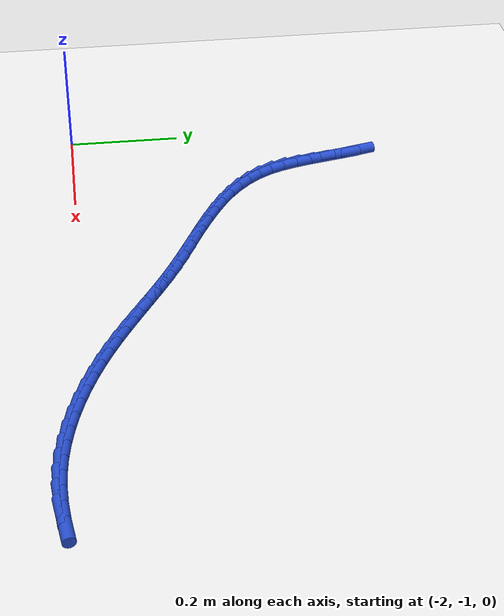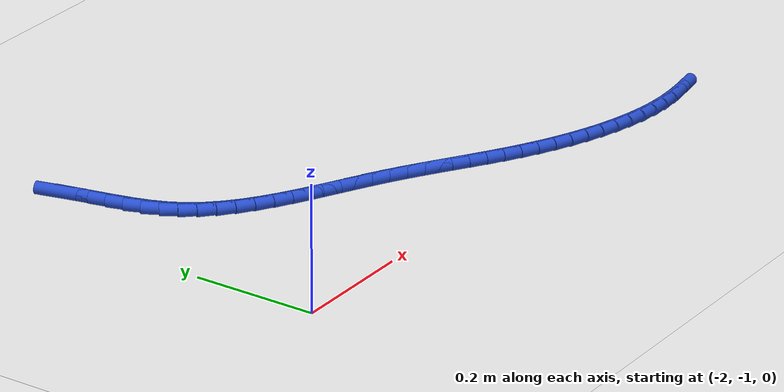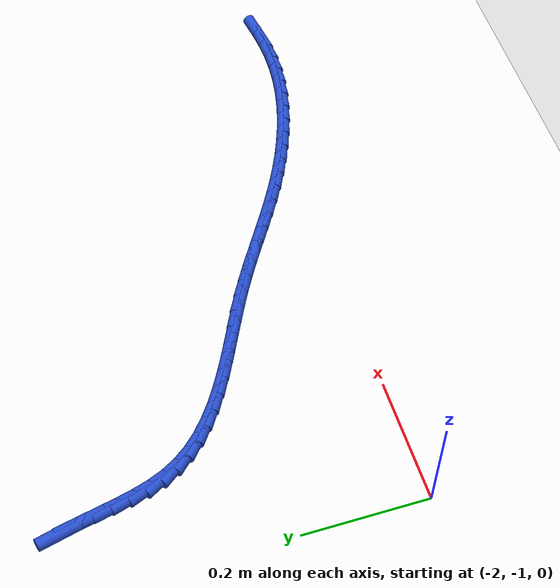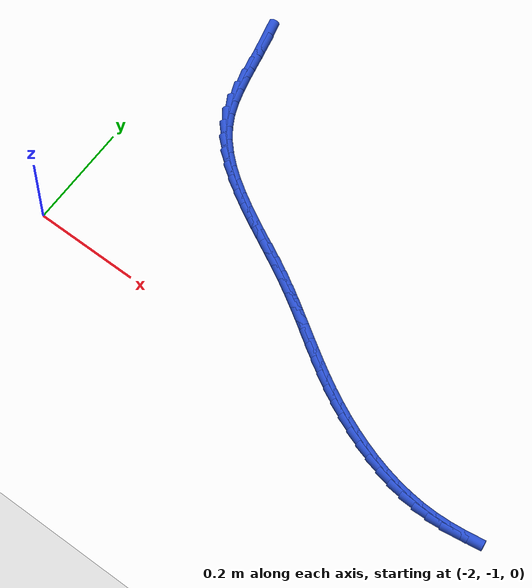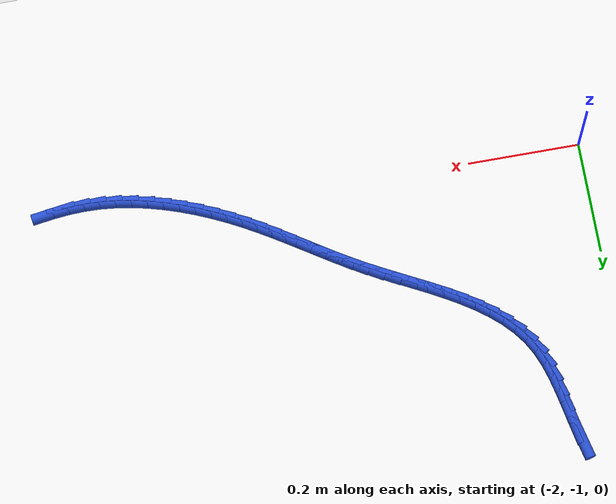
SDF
<sdf version="1.6">
 <world name="default">
  <model name="ground_plane">
   <static>1</static>
   <link name="link">
    <collision name="collision">
     <geometry><plane><normal>0 0 1</normal><size>100 100</size></plane></geometry>
     <surface><friction><ode><mu>100</mu><mu2>50</mu2></ode></friction></surface>
    </collision>
    <visual name="visual">
     <cast_shadows>0</cast_shadows>
     <geometry><plane><normal>0 0 1</normal><size>100 100</size></plane></geometry>
     <material>
      <script><uri>file://media/materials/scripts/gazebo.material</uri><name>Gazebo/WhiteGlow</name></script>
     </material>
    </visual>
   </link>
  </model>
  <model name="line">
   <link name="link_135">
    <pose>-1.8991626105600103 -0.4749659148873171 0.01 0 1.57 -1.340423242050216</pose>
    <collision name="collision">
     <geometry><cylinder><radius>0.01</radius><length>0.08</length></cylinder></geometry>
    </collision>
    <visual name="visual">
     <material>
      <script><name>Gazebo/Blue</name><uri>file://media/materials/scripts/gazebo.material</uri></script>
     </material>
     <geometry><cylinder><radius>0.01</radius><length>0.08</length></cylinder></geometry>
    </visual>
   </link>
   <link name="link_136">
    <pose>-1.8924834912622064 -0.5034438145118381 0.01 0 1.57 -1.3678612541677018</pose>
    <collision name="collision">
     <geometry><cylinder><radius>0.01</radius><length>0.08</length></cylinder></geometry>
    </collision>
    <visual name="visual">
     <material>
      <script><name>Gazebo/Blue</name><uri>file://media/materials/scripts/gazebo.material</uri></script>
     </material>
     <geometry><cylinder><radius>0.01</radius><length>0.08</length></cylinder></geometry>
    </visual>
   </link>
   <link name="link_137">
    <pose>-1.8865748603837853 -0.5321588918095376 0.01 0 1.57 -1.3676990048068947</pose>
    <collision name="collision">
     <geometry><cylinder><radius>0.01</radius><length>0.08</length></cylinder></geometry>
    </collision>
    <visual name="visual">
     <material>
      <script><name>Gazebo/Blue</name><uri>file://media/materials/scripts/gazebo.material</uri></script>
     </material>
     <geometry><cylinder><radius>0.01</radius><length>0.08</length></cylinder></geometry>
    </visual>
   </link>
   <link name="link_138">
    <pose>-1.8807017356431261 -0.5606779740618212 0.01 0 1.57 -1.3393568377235328</pose>
    <collision name="collision">
     <geometry><cylinder><radius>0.01</radius><length>0.08</length></cylinder></geometry>
    </collision>
    <visual name="visual">
     <material>
      <script><name>Gazebo/Blue</name><uri>file://media/materials/scripts/gazebo.material</uri></script>
     </material>
     <geometry><cylinder><radius>0.01</radius><length>0.08</length></cylinder></geometry>
    </visual>
   </link>
   <link name="link_139">
    <pose>-1.87412913475861 -0.5885678885500945 0.01 0 1.57 -1.2807494980696872</pose>
    <collision name="collision">
     <geometry><cylinder><radius>0.01</radius><length>0.08</length></cylinder></geometry>
    </collision>
    <visual name="visual">
     <material>
      <script><name>Gazebo/Blue</name><uri>file://media/materials/scripts/gazebo.material</uri></script>
     </material>
     <geometry><cylinder><radius>0.01</radius><length>0.08</length></cylinder></geometry>
    </visual>
   </link>
   <link name="link_140">
    <pose>-1.8661220754486165 -0.6153954625557637 0.01 0 1.57 -1.1888045173449513</pose>
    <collision name="collision">
     <geometry><cylinder><radius>0.01</radius><length>0.08</length></cylinder></geometry>
    </collision>
    <visual name="visual">
     <material>
      <script><name>Gazebo/Blue</name><uri>file://media/materials/scripts/gazebo.material</uri></script>
     </material>
     <geometry><cylinder><radius>0.01</radius><length>0.08</length></cylinder></geometry>
    </visual>
   </link>
   <link name="link_141">
    <pose>-1.8559455754315253 -0.6407275233602328 0.01 0 1.57 -1.063014744393864</pose>
    <collision name="collision">
     <geometry><cylinder><radius>0.01</radius><length>0.08</length></cylinder></geometry>
    </collision>
    <visual name="visual">
     <material>
      <script><name>Gazebo/Blue</name><uri>file://media/materials/scripts/gazebo.material</uri></script>
     </material>
     <geometry><cylinder><radius>0.01</radius><length>0.08</length></cylinder></geometry>
    </visual>
   </link>
   <link name="link_142">
    <pose>-1.842908160553737 -0.6641571568816543 0.01 0 1.57 -0.9309074894950503</pose>
    <collision name="collision">
     <geometry><cylinder><radius>0.01</radius><length>0.08</length></cylinder></geometry>
    </collision>
    <visual name="visual">
     <material>
      <script><name>Gazebo/Blue</name><uri>file://media/materials/scripts/gazebo.material</uri></script>
     </material>
     <geometry><cylinder><radius>0.01</radius><length>0.08</length></cylinder></geometry>
    </visual>
   </link>
   <link name="link_143">
    <pose>-1.826917609967283 -0.6856391188131798 0.01 0 1.57 -0.8154419004020297</pose>
    <collision name="collision">
     <geometry><cylinder><radius>0.01</radius><length>0.08</length></cylinder></geometry>
    </collision>
    <visual name="visual">
     <material>
      <script><name>Gazebo/Blue</name><uri>file://media/materials/scripts/gazebo.material</uri></script>
     </material>
     <geometry><cylinder><radius>0.01</radius><length>0.08</length></cylinder></geometry>
    </visual>
   </link>
   <link name="link_144">
    <pose>-1.8083178930465604 -0.7053914204997821 0.01 0 1.57 -0.71878743121817</pose>
    <collision name="collision">
     <geometry><cylinder><radius>0.01</radius><length>0.08</length></cylinder></geometry>
    </collision>
    <visual name="visual">
     <material>
      <script><name>Gazebo/Blue</name><uri>file://media/materials/scripts/gazebo.material</uri></script>
     </material>
     <geometry><cylinder><radius>0.01</radius><length>0.08</length></cylinder></geometry>
    </visual>
   </link>
   <link name="link_145">
    <pose>-1.7874628399161068 -0.7236380245849086 0.01 0 1.57 -0.6406107652469166</pose>
    <collision name="collision">
     <geometry><cylinder><radius>0.01</radius><length>0.08</length></cylinder></geometry>
    </collision>
    <visual name="visual">
     <material>
      <script><name>Gazebo/Blue</name><uri>file://media/materials/scripts/gazebo.material</uri></script>
     </material>
     <geometry><cylinder><radius>0.01</radius><length>0.08</length></cylinder></geometry>
    </visual>
   </link>
   <link name="link_146">
    <pose>-1.76470628070046 -0.7406028937120083 0.01 0 1.57 -0.5795314399727772</pose>
    <collision name="collision">
     <geometry><cylinder><radius>0.01</radius><length>0.08</length></cylinder></geometry>
    </collision>
    <visual name="visual">
     <material>
      <script><name>Gazebo/Blue</name><uri>file://media/materials/scripts/gazebo.material</uri></script>
     </material>
     <geometry><cylinder><radius>0.01</radius><length>0.08</length></cylinder></geometry>
    </visual>
   </link>
   <link name="link_147">
    <pose>-1.740402045524158 -0.7565099905245297 0.01 0 1.57 -0.5338895392951855</pose>
    <collision name="collision">
     <geometry><cylinder><radius>0.01</radius><length>0.08</length></cylinder></geometry>
    </collision>
    <visual name="visual">
     <material>
      <script><name>Gazebo/Blue</name><uri>file://media/materials/scripts/gazebo.material</uri></script>
     </material>
     <geometry><cylinder><radius>0.01</radius><length>0.08</length></cylinder></geometry>
    </visual>
   </link>
   <link name="link_148">
    <pose>-1.7149039645117377 -0.7715832776659219 0.01 0 1.57 -0.5021867186811575</pose>
    <collision name="collision">
     <geometry><cylinder><radius>0.01</radius><length>0.08</length></cylinder></geometry>
    </collision>
    <visual name="visual">
     <material>
      <script><name>Gazebo/Blue</name><uri>file://media/materials/scripts/gazebo.material</uri></script>
     </material>
     <geometry><cylinder><radius>0.01</radius><length>0.08</length></cylinder></geometry>
    </visual>
   </link>
   <link name="link_149">
    <pose>-1.688565867787738 -0.7860467177796329 0.01 0 1.57 -0.48329524111359184</pose>
    <collision name="collision">
     <geometry><cylinder><radius>0.01</radius><length>0.08</length></cylinder></geometry>
    </collision>
    <visual name="visual">
     <material>
      <script><name>Gazebo/Blue</name><uri>file://media/materials/scripts/gazebo.material</uri></script>
     </material>
     <geometry><cylinder><radius>0.01</radius><length>0.08</length></cylinder></geometry>
    </visual>
   </link>
   <link name="link_150">
    <pose>-1.6617415854766961 -0.8001242735091111 0.01 0 1.57 -0.47654154669111537</pose>
    <collision name="collision">
     <geometry><cylinder><radius>0.01</radius><length>0.08</length></cylinder></geometry>
    </collision>
    <visual name="visual">
     <material>
      <script><name>Gazebo/Blue</name><uri>file://media/materials/scripts/gazebo.material</uri></script>
     </material>
     <geometry><cylinder><radius>0.01</radius><length>0.08</length></cylinder></geometry>
    </visual>
   </link>
   <link name="link_151">
    <pose>-1.6347849477031495 -0.8140399074978053 0.01 0 1.57 -0.48173641170073617</pose>
    <collision name="collision">
     <geometry><cylinder><radius>0.01</radius><length>0.08</length></cylinder></geometry>
    </collision>
    <visual name="visual">
     <material>
      <script><name>Gazebo/Blue</name><uri>file://media/materials/scripts/gazebo.material</uri></script>
     </material>
     <geometry><cylinder><radius>0.01</radius><length>0.08</length></cylinder></geometry>
    </visual>
   </link>
   <link name="link_152">
    <pose>-1.6080497845916364 -0.828017582389164 0.01 0 1.57 -0.4991895270145074</pose>
    <collision name="collision">
     <geometry><cylinder><radius>0.01</radius><length>0.08</length></cylinder></geometry>
    </collision>
    <visual name="visual">
     <material>
      <script><name>Gazebo/Blue</name><uri>file://media/materials/scripts/gazebo.material</uri></script>
     </material>
     <geometry><cylinder><radius>0.01</radius><length>0.08</length></cylinder></geometry>
    </visual>
   </link>
   <link name="link_153">
    <pose>-1.5818899262666934 -0.8422812608266363 0.01 0 1.57 -0.526271292904253</pose>
    <collision name="collision">
     <geometry><cylinder><radius>0.01</radius><length>0.08</length></cylinder></geometry>
    </collision>
    <visual name="visual">
     <material>
      <script><name>Gazebo/Blue</name><uri>file://media/materials/scripts/gazebo.material</uri></script>
     </material>
     <geometry><cylinder><radius>0.01</radius><length>0.08</length></cylinder></geometry>
    </visual>
   </link>
   <link name="link_154">
    <pose>-1.5565655221801127 -0.8569926918895487 0.01 0 1.57 -0.549575970072811</pose>
    <collision name="collision">
     <geometry><cylinder><radius>0.01</radius><length>0.08</length></cylinder></geometry>
    </collision>
    <visual name="visual">
     <material>
      <script><name>Gazebo/Blue</name><uri>file://media/materials/scripts/gazebo.material</uri></script>
     </material>
     <geometry><cylinder><radius>0.01</radius><length>0.08</length></cylinder></geometry>
    </visual>
   </link>
   <link name="link_155">
    <pose>-1.5319605258746796 -0.872063792033052 0.01 0 1.57 -0.5651363477153404</pose>
    <collision name="collision">
     <geometry><cylinder><radius>0.01</radius><length>0.08</length></cylinder></geometry>
    </collision>
    <visual name="visual">
     <material>
      <script><name>Gazebo/Blue</name><uri>file://media/materials/scripts/gazebo.material</uri></script>
     </material>
     <geometry><cylinder><radius>0.01</radius><length>0.08</length></cylinder></geometry>
    </visual>
   </link>
   <link name="link_156">
    <pose>-1.5078644721645973 -0.8873437740034884 0.01 0 1.57 -0.5725150569447013</pose>
    <collision name="collision">
     <geometry><cylinder><radius>0.01</radius><length>0.08</length></cylinder></geometry>
    </collision>
    <visual name="visual">
     <material>
      <script><name>Gazebo/Blue</name><uri>file://media/materials/scripts/gazebo.material</uri></script>
     </material>
     <geometry><cylinder><radius>0.01</radius><length>0.08</length></cylinder></geometry>
    </visual>
   </link>
   <link name="link_157">
    <pose>-1.4840668958638594 -0.9026818505470617 0.01 0 1.57 -0.5714425596325272</pose>
    <collision name="collision">
     <geometry><cylinder><radius>0.01</radius><length>0.08</length></cylinder></geometry>
    </collision>
    <visual name="visual">
     <material>
      <script><name>Gazebo/Blue</name><uri>file://media/materials/scripts/gazebo.material</uri></script>
     </material>
     <geometry><cylinder><radius>0.01</radius><length>0.08</length></cylinder></geometry>
    </visual>
   </link>
   <link name="link_158">
    <pose>-1.46035733178646 -0.9179272344099735 0.01 0 1.57 -0.5618181855838825</pose>
    <collision name="collision">
     <geometry><cylinder><radius>0.01</radius><length>0.08</length></cylinder></geometry>
    </collision>
    <visual name="visual">
     <material>
      <script><name>Gazebo/Blue</name><uri>file://media/materials/scripts/gazebo.material</uri></script>
     </material>
     <geometry><cylinder><radius>0.01</radius><length>0.08</length></cylinder></geometry>
    </visual>
   </link>
   <link name="link_159">
    <pose>-1.4365253147463917 -0.9329291383384264 0.01 0 1.57 -0.5437197379155169</pose>
    <collision name="collision">
     <geometry><cylinder><radius>0.01</radius><length>0.08</length></cylinder></geometry>
    </collision>
    <visual name="visual">
     <material>
      <script><name>Gazebo/Blue</name><uri>file://media/materials/scripts/gazebo.material</uri></script>
     </material>
     <geometry><cylinder><radius>0.01</radius><length>0.08</length></cylinder></geometry>
    </visual>
   </link>
   <link name="link_160">
    <pose>-1.412360379557648 -0.9475367750786235 0.01 0 1.57 -0.5174220017554139</pose>
    <collision name="collision">
     <geometry><cylinder><radius>0.01</radius><length>0.08</length></cylinder></geometry>
    </collision>
    <visual name="visual">
     <material>
      <script><name>Gazebo/Blue</name><uri>file://media/materials/scripts/gazebo.material</uri></script>
     </material>
     <geometry><cylinder><radius>0.01</radius><length>0.08</length></cylinder></geometry>
    </visual>
   </link>
   <link name="link_161">
    <pose>-1.387652064861018 -0.9615993575215871 0.01 0 1.57 -0.48439206911008736</pose>
    <collision name="collision">
     <geometry><cylinder><radius>0.01</radius><length>0.08</length></cylinder></geometry>
    </collision>
    <visual name="visual">
     <material>
      <script><name>Gazebo/Blue</name><uri>file://media/materials/scripts/gazebo.material</uri></script>
     </material>
     <geometry><cylinder><radius>0.01</radius><length>0.08</length></cylinder></geometry>
    </visual>
   </link>
   <link name="link_162">
    <pose>-1.362245935963904 -0.9749682188098728 0.01 0 1.57 -0.44828694570296873</pose>
    <collision name="collision">
     <geometry><cylinder><radius>0.01</radius><length>0.08</length></cylinder></geometry>
    </collision>
    <visual name="visual">
     <material>
      <script><name>Gazebo/Blue</name><uri>file://media/materials/scripts/gazebo.material</uri></script>
     </material>
     <geometry><cylinder><radius>0.01</radius><length>0.08</length></cylinder></geometry>
    </visual>
   </link>
   <link name="link_163">
    <pose>-1.3361848194540162 -0.9875021571657369 0.01 0 1.57 -0.40953484881155183</pose>
    <collision name="collision">
     <geometry><cylinder><radius>0.01</radius><length>0.08</length></cylinder></geometry>
    </collision>
    <visual name="visual">
     <material>
      <script><name>Gazebo/Blue</name><uri>file://media/materials/scripts/gazebo.material</uri></script>
     </material>
     <geometry><cylinder><radius>0.01</radius><length>0.08</length></cylinder></geometry>
    </visual>
   </link>
   <link name="link_164">
    <pose>-1.309554933034536 -0.999061612888053 0.01 0 1.57 -0.3677376767096795</pose>
    <collision name="collision">
     <geometry><cylinder><radius>0.01</radius><length>0.08</length></cylinder></geometry>
    </collision>
    <visual name="visual">
     <material>
      <script><name>Gazebo/Blue</name><uri>file://media/materials/scripts/gazebo.material</uri></script>
     </material>
     <geometry><cylinder><radius>0.01</radius><length>0.08</length></cylinder></geometry>
    </visual>
   </link>
   <link name="link_165">
    <pose>-1.2824424944086448 -1.009507026275694 0.01 0 1.57 -0.32247735632903757</pose>
    <collision name="collision">
     <geometry><cylinder><radius>0.01</radius><length>0.08</length></cylinder></geometry>
    </collision>
    <visual name="visual">
     <material>
      <script><name>Gazebo/Blue</name><uri>file://media/materials/scripts/gazebo.material</uri></script>
     </material>
     <geometry><cylinder><radius>0.01</radius><length>0.08</length></cylinder></geometry>
    </visual>
   </link>
   <link name="link_166">
    <pose>-1.254933721279523 -1.0186988376275328 0.01 0 1.57 -0.27332069144602295</pose>
    <collision name="collision">
     <geometry><cylinder><radius>0.01</radius><length>0.08</length></cylinder></geometry>
    </collision>
    <visual name="visual">
     <material>
      <script><name>Gazebo/Blue</name><uri>file://media/materials/scripts/gazebo.material</uri></script>
     </material>
     <geometry><cylinder><radius>0.01</radius><length>0.08</length></cylinder></geometry>
    </visual>
   </link>
   <link name="link_167">
    <pose>-1.2271148313503542 -1.0264974872424422 0.01 0 1.57 -0.21983072654639754</pose>
    <collision name="collision">
     <geometry><cylinder><radius>0.01</radius><length>0.08</length></cylinder></geometry>
    </collision>
    <visual name="visual">
     <material>
      <script><name>Gazebo/Blue</name><uri>file://media/materials/scripts/gazebo.material</uri></script>
     </material>
     <geometry><cylinder><radius>0.01</radius><length>0.08</length></cylinder></geometry>
    </visual>
   </link>
   <link name="link_168">
    <pose>-1.1990720423243177 -1.032763415419295 0.01 0 1.57 -0.1615869653443303</pose>
    <collision name="collision">
     <geometry><cylinder><radius>0.01</radius><length>0.08</length></cylinder></geometry>
    </collision>
    <visual name="visual">
     <material>
      <script><name>Gazebo/Blue</name><uri>file://media/materials/scripts/gazebo.material</uri></script>
     </material>
     <geometry><cylinder><radius>0.01</radius><length>0.08</length></cylinder></geometry>
    </visual>
   </link>
   <link name="link_169">
    <pose>-1.1708915719045965 -1.0373570624569641 0.01 0 1.57 -0.09821698577624312</pose>
    <collision name="collision">
     <geometry><cylinder><radius>0.01</radius><length>0.08</length></cylinder></geometry>
    </collision>
    <visual name="visual">
     <material>
      <script><name>Gazebo/Blue</name><uri>file://media/materials/scripts/gazebo.material</uri></script>
     </material>
     <geometry><cylinder><radius>0.01</radius><length>0.08</length></cylinder></geometry>
    </visual>
   </link>
   <link name="link_170">
    <pose>-1.1426596377943703 -1.0401388686543225 0.01 0 1.57 -0.029535142020872242</pose>
    <collision name="collision">
     <geometry><cylinder><radius>0.01</radius><length>0.08</length></cylinder></geometry>
    </collision>
    <visual name="visual">
     <material>
      <script><name>Gazebo/Blue</name><uri>file://media/materials/scripts/gazebo.material</uri></script>
     </material>
     <geometry><cylinder><radius>0.01</radius><length>0.08</length></cylinder></geometry>
    </visual>
   </link>
   <link name="link_171">
    <pose>-1.1144617663159706 -1.0409719390431469 0.01 0 1.57 0.03895643911659675</pose>
    <collision name="collision">
     <geometry><cylinder><radius>0.01</radius><length>0.08</length></cylinder></geometry>
    </collision>
    <visual name="visual">
     <material>
      <script><name>Gazebo/Blue</name><uri>file://media/materials/scripts/gazebo.material</uri></script>
     </material>
     <geometry><cylinder><radius>0.01</radius><length>0.08</length></cylinder></geometry>
    </visual>
   </link>
   <link name="link_172">
    <pose>-1.0863428547386256 -1.0398759719054005 0.01 0 1.57 0.09821125201656625</pose>
    <collision name="collision">
     <geometry><cylinder><radius>0.01</radius><length>0.08</length></cylinder></geometry>
    </collision>
    <visual name="visual">
     <material>
      <script><name>Gazebo/Blue</name><uri>file://media/materials/scripts/gazebo.material</uri></script>
     </material>
     <geometry><cylinder><radius>0.01</radius><length>0.08</length></cylinder></geometry>
    </visual>
   </link>
   <link name="link_173">
    <pose>-1.0582853113878574 -1.037111511569136 0.01 0 1.57 0.1471109398006706</pose>
    <collision name="collision">
     <geometry><cylinder><radius>0.01</radius><length>0.08</length></cylinder></geometry>
    </collision>
    <visual name="visual">
     <material>
      <script><name>Gazebo/Blue</name><uri>file://media/materials/scripts/gazebo.material</uri></script>
     </material>
     <geometry><cylinder><radius>0.01</radius><length>0.08</length></cylinder></geometry>
    </visual>
   </link>
  </model>
 </world>
</sdf>
